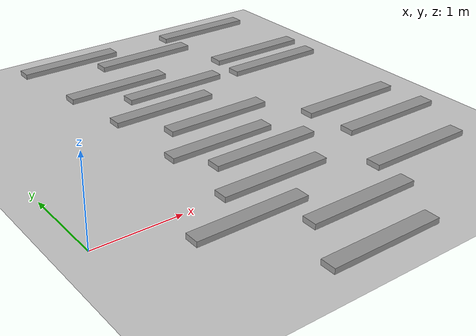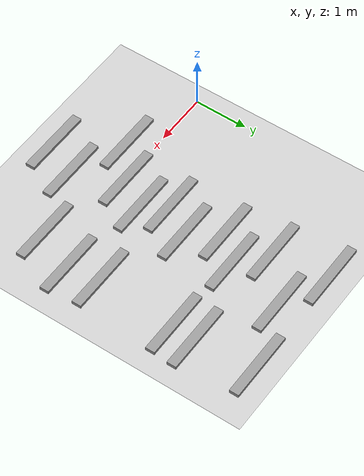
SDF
<sdf version="1.6">
 <world name="default">
  <model name="ground_plane">
   <static>1</static>
   <link name="link">
    <collision name="collision">
     <geometry><plane><normal>0 0 1</normal><size>100 100</size></plane></geometry>
     <surface>
      <contact><ode><kp>1e+12</kp><min_depth>0.01</min_depth></ode></contact>
      <friction><ode><mu>1e+06</mu><mu2>500000</mu2></ode></friction>
     </surface>
    </collision>
    <visual name="visual">
     <cast_shadows>0</cast_shadows>
     <geometry><plane><normal>0 0 1</normal><size>100 100</size></plane></geometry>
     <material>
      <script><uri>file://media/materials/scripts/gazebo.material</uri><name>Gazebo/Grey</name></script>
     </material>
    </visual>
   </link>
  </model>
  <model name="unit_box_heavy_clone_clone_clone">
   <link name="unit_box::link">
    <inertial>
     <mass>5000</mass>
     <inertia><ixx>833.333</ixx><ixy>0</ixy><ixz>0</ixz><iyy>833.333</iyy><iyz>0</iyz><izz>833.333</izz></inertia>
    </inertial>
    <visual name="visual">
     <geometry><box><size>1.30816 0.176312 0.062582</size></box></geometry>
     <material>
      <script><name>Gazebo/Grey</name><uri>file://media/materials/scripts/gazebo.material</uri></script>
      <shader type="pixel"><normal_map>__default__</normal_map></shader>
     </material>
    </visual>
    <collision name="collision">
     <geometry><box><size>1.30816 0.176312 0.062582</size></box></geometry>
     <surface>
      <friction>
       <ode><mu>1</mu><mu2>1</mu2><fdir1>0 0 0</fdir1><slip1>0</slip1><slip2>0</slip2></ode>
       <torsional>
        <coefficient>1</coefficient>
        <patch_radius>0</patch_radius>
        <surface_radius>0</surface_radius>
        <use_patch_radius>1</use_patch_radius>
        <ode><slip>0</slip></ode>
       </torsional>
      </friction>
      <bounce><restitution_coefficient>0</restitution_coefficient><threshold>1e+06</threshold></bounce>
      <contact>
       <collide_without_contact>0</collide_without_contact>
       <collide_without_contact_bitmask>1</collide_without_contact_bitmask>
       <collide_bitmask>1</collide_bitmask>
       <ode>
        <soft_cfm>0</soft_cfm>
        <soft_erp>0.2</soft_erp>
        <kp>1e+13</kp>
        <kd>1</kd>
        <max_vel>0.01</max_vel>
        <min_depth>0</min_depth>
       </ode>
       <bullet>
        <split_impulse>1</split_impulse>
        <split_impulse_penetration_threshold>-0.01</split_impulse_penetration_threshold>
        <soft_cfm>0</soft_cfm>
        <soft_erp>0.2</soft_erp>
        <kp>1e+13</kp>
        <kd>1</kd>
       </bullet>
      </contact>
     </surface>
    </collision>
   </link>
   <static>0</static>
   <pose>2.08958 0.009134 0.031291 -0 -0 -3e-05</pose>
  </model>
  <model name="unit_box_heavy_clone_clone_clone_clone_1">
   <link name="unit_box::link">
    <inertial>
     <mass>5000</mass>
     <inertia><ixx>833.333</ixx><ixy>0</ixy><ixz>0</ixz><iyy>833.333</iyy><iyz>0</iyz><izz>833.333</izz></inertia>
    </inertial>
    <visual name="visual">
     <geometry><box><size>1.30816 0.176312 0.062582</size></box></geometry>
     <material>
      <script><name>Gazebo/Grey</name><uri>file://media/materials/scripts/gazebo.material</uri></script>
      <shader type="pixel"><normal_map>__default__</normal_map></shader>
     </material>
    </visual>
    <collision name="collision">
     <geometry><box><size>1.30816 0.176312 0.062582</size></box></geometry>
     <surface>
      <friction>
       <ode><mu>1</mu><mu2>1</mu2><fdir1>0 0 0</fdir1><slip1>0</slip1><slip2>0</slip2></ode>
       <torsional>
        <coefficient>1</coefficient>
        <patch_radius>0</patch_radius>
        <surface_radius>0</surface_radius>
        <use_patch_radius>1</use_patch_radius>
        <ode><slip>0</slip></ode>
       </torsional>
      </friction>
      <bounce><restitution_coefficient>0</restitution_coefficient><threshold>1e+06</threshold></bounce>
      <contact>
       <collide_without_contact>0</collide_without_contact>
       <collide_without_contact_bitmask>1</collide_without_contact_bitmask>
       <collide_bitmask>1</collide_bitmask>
       <ode>
        <soft_cfm>0</soft_cfm>
        <soft_erp>0.2</soft_erp>
        <kp>1e+13</kp>
        <kd>1</kd>
        <max_vel>0.01</max_vel>
        <min_depth>0</min_depth>
       </ode>
       <bullet>
        <split_impulse>1</split_impulse>
        <split_impulse_penetration_threshold>-0.01</split_impulse_penetration_threshold>
        <soft_cfm>0</soft_cfm>
        <soft_erp>0.2</soft_erp>
        <kp>1e+13</kp>
        <kd>1</kd>
       </bullet>
      </contact>
     </surface>
    </collision>
   </link>
   <static>0</static>
   <pose>2.38982 0.534391 0.031291 0 0 -3e-05</pose>
  </model>
  <model name="unit_box_heavy_clone_clone_clone_clone_2">
   <link name="unit_box::link">
    <inertial>
     <mass>5000</mass>
     <inertia><ixx>833.333</ixx><ixy>0</ixy><ixz>0</ixz><iyy>833.333</iyy><iyz>0</iyz><izz>833.333</izz></inertia>
    </inertial>
    <visual name="visual">
     <geometry><box><size>1.30816 0.176312 0.062582</size></box></geometry>
     <material>
      <script><name>Gazebo/Grey</name><uri>file://media/materials/scripts/gazebo.material</uri></script>
      <shader type="pixel"><normal_map>__default__</normal_map></shader>
     </material>
    </visual>
    <collision name="collision">
     <geometry><box><size>1.30816 0.176312 0.062582</size></box></geometry>
     <surface>
      <friction>
       <ode><mu>1</mu><mu2>1</mu2><fdir1>0 0 0</fdir1><slip1>0</slip1><slip2>0</slip2></ode>
       <torsional>
        <coefficient>1</coefficient>
        <patch_radius>0</patch_radius>
        <surface_radius>0</surface_radius>
        <use_patch_radius>1</use_patch_radius>
        <ode><slip>0</slip></ode>
       </torsional>
      </friction>
      <bounce><restitution_coefficient>0</restitution_coefficient><threshold>1e+06</threshold></bounce>
      <contact>
       <collide_without_contact>0</collide_without_contact>
       <collide_without_contact_bitmask>1</collide_without_contact_bitmask>
       <collide_bitmask>1</collide_bitmask>
       <ode>
        <soft_cfm>0</soft_cfm>
        <soft_erp>0.2</soft_erp>
        <kp>1e+13</kp>
        <kd>1</kd>
        <max_vel>0.01</max_vel>
        <min_depth>0</min_depth>
       </ode>
       <bullet>
        <split_impulse>1</split_impulse>
        <split_impulse_penetration_threshold>-0.01</split_impulse_penetration_threshold>
        <soft_cfm>0</soft_cfm>
        <soft_erp>0.2</soft_erp>
        <kp>1e+13</kp>
        <kd>1</kd>
       </bullet>
      </contact>
     </surface>
    </collision>
   </link>
   <static>0</static>
   <pose>2.11435 0.94215 0.031291 -0 -0 -3e-05</pose>
  </model>
  <model name="unit_box_heavy_clone_clone_clone_clone_3">
   <link name="unit_box::link">
    <inertial>
     <mass>5000</mass>
     <inertia><ixx>833.333</ixx><ixy>0</ixy><ixz>0</ixz><iyy>833.333</iyy><iyz>0</iyz><izz>833.333</izz></inertia>
    </inertial>
    <visual name="visual">
     <geometry><box><size>1.30816 0.176312 0.062582</size></box></geometry>
     <material>
      <script><name>Gazebo/Grey</name><uri>file://media/materials/scripts/gazebo.material</uri></script>
      <shader type="pixel"><normal_map>__default__</normal_map></shader>
     </material>
    </visual>
    <collision name="collision">
     <geometry><box><size>1.30816 0.176312 0.062582</size></box></geometry>
     <surface>
      <friction>
       <ode><mu>1</mu><mu2>1</mu2><fdir1>0 0 0</fdir1><slip1>0</slip1><slip2>0</slip2></ode>
       <torsional>
        <coefficient>1</coefficient>
        <patch_radius>0</patch_radius>
        <surface_radius>0</surface_radius>
        <use_patch_radius>1</use_patch_radius>
        <ode><slip>0</slip></ode>
       </torsional>
      </friction>
      <bounce><restitution_coefficient>0</restitution_coefficient><threshold>1e+06</threshold></bounce>
      <contact>
       <collide_without_contact>0</collide_without_contact>
       <collide_without_contact_bitmask>1</collide_without_contact_bitmask>
       <collide_bitmask>1</collide_bitmask>
       <ode>
        <soft_cfm>0</soft_cfm>
        <soft_erp>0.2</soft_erp>
        <kp>1e+13</kp>
        <kd>1</kd>
        <max_vel>0.01</max_vel>
        <min_depth>0</min_depth>
       </ode>
       <bullet>
        <split_impulse>1</split_impulse>
        <split_impulse_penetration_threshold>-0.01</split_impulse_penetration_threshold>
        <soft_cfm>0</soft_cfm>
        <soft_erp>0.2</soft_erp>
        <kp>1e+13</kp>
        <kd>1</kd>
       </bullet>
      </contact>
     </surface>
    </collision>
   </link>
   <static>0</static>
   <pose>2.44199 1.45418 0.031291 0 0 -3e-05</pose>
  </model>
  <model name="unit_box_heavy_clone_clone_clone_clone_4">
   <link name="unit_box::link">
    <inertial>
     <mass>5000</mass>
     <inertia><ixx>833.333</ixx><ixy>0</ixy><ixz>0</ixz><iyy>833.333</iyy><iyz>0</iyz><izz>833.333</izz></inertia>
    </inertial>
    <visual name="visual">
     <geometry><box><size>1.30816 0.176312 0.062582</size></box></geometry>
     <material>
      <script><name>Gazebo/Grey</name><uri>file://media/materials/scripts/gazebo.material</uri></script>
      <shader type="pixel"><normal_map>__default__</normal_map></shader>
     </material>
    </visual>
    <collision name="collision">
     <geometry><box><size>1.30816 0.176312 0.062582</size></box></geometry>
     <surface>
      <friction>
       <ode><mu>1</mu><mu2>1</mu2><fdir1>0 0 0</fdir1><slip1>0</slip1><slip2>0</slip2></ode>
       <torsional>
        <coefficient>1</coefficient>
        <patch_radius>0</patch_radius>
        <surface_radius>0</surface_radius>
        <use_patch_radius>1</use_patch_radius>
        <ode><slip>0</slip></ode>
       </torsional>
      </friction>
      <bounce><restitution_coefficient>0</restitution_coefficient><threshold>1e+06</threshold></bounce>
      <contact>
       <collide_without_contact>0</collide_without_contact>
       <collide_without_contact_bitmask>1</collide_without_contact_bitmask>
       <collide_bitmask>1</collide_bitmask>
       <ode>
        <soft_cfm>0</soft_cfm>
        <soft_erp>0.2</soft_erp>
        <kp>1e+13</kp>
        <kd>1</kd>
        <max_vel>0.01</max_vel>
        <min_depth>0</min_depth>
       </ode>
       <bullet>
        <split_impulse>1</split_impulse>
        <split_impulse_penetration_threshold>-0.01</split_impulse_penetration_threshold>
        <soft_cfm>0</soft_cfm>
        <soft_erp>0.2</soft_erp>
        <kp>1e+13</kp>
        <kd>1</kd>
       </bullet>
      </contact>
     </surface>
    </collision>
   </link>
   <static>0</static>
   <pose>2.06355 1.99736 0.031291 -0 -0 -3e-05</pose>
  </model>
  <model name="unit_box_heavy_clone_clone_clone_clone_5">
   <link name="unit_box::link">
    <inertial>
     <mass>5000</mass>
     <inertia><ixx>833.333</ixx><ixy>0</ixy><ixz>0</ixz><iyy>833.333</iyy><iyz>0</iyz><izz>833.333</izz></inertia>
    </inertial>
    <visual name="visual">
     <geometry><box><size>1.30816 0.176312 0.062582</size></box></geometry>
     <material>
      <script><name>Gazebo/Grey</name><uri>file://media/materials/scripts/gazebo.material</uri></script>
      <shader type="pixel"><normal_map>__default__</normal_map></shader>
     </material>
    </visual>
    <collision name="collision">
     <geometry><box><size>1.30816 0.176312 0.062582</size></box></geometry>
     <surface>
      <friction>
       <ode><mu>1</mu><mu2>1</mu2><fdir1>0 0 0</fdir1><slip1>0</slip1><slip2>0</slip2></ode>
       <torsional>
        <coefficient>1</coefficient>
        <patch_radius>0</patch_radius>
        <surface_radius>0</surface_radius>
        <use_patch_radius>1</use_patch_radius>
        <ode><slip>0</slip></ode>
       </torsional>
      </friction>
      <bounce><restitution_coefficient>0</restitution_coefficient><threshold>1e+06</threshold></bounce>
      <contact>
       <collide_without_contact>0</collide_without_contact>
       <collide_without_contact_bitmask>1</collide_without_contact_bitmask>
       <collide_bitmask>1</collide_bitmask>
       <ode>
        <soft_cfm>0</soft_cfm>
        <soft_erp>0.2</soft_erp>
        <kp>1e+13</kp>
        <kd>1</kd>
        <max_vel>0.01</max_vel>
        <min_depth>0</min_depth>
       </ode>
       <bullet>
        <split_impulse>1</split_impulse>
        <split_impulse_penetration_threshold>-0.01</split_impulse_penetration_threshold>
        <soft_cfm>0</soft_cfm>
        <soft_erp>0.2</soft_erp>
        <kp>1e+13</kp>
        <kd>1</kd>
       </bullet>
      </contact>
     </surface>
    </collision>
   </link>
   <static>0</static>
   <pose>2.50068 2.42632 0.031291 0 0 -3e-05</pose>
  </model>
  <model name="unit_box_heavy_clone_clone_clone_clone_6">
   <link name="unit_box::link">
    <inertial>
     <mass>5000</mass>
     <inertia><ixx>833.333</ixx><ixy>0</ixy><ixz>0</ixz><iyy>833.333</iyy><iyz>0</iyz><izz>833.333</izz></inertia>
    </inertial>
    <visual name="visual">
     <geometry><box><size>1.30816 0.176312 0.062582</size></box></geometry>
     <material>
      <script><name>Gazebo/Grey</name><uri>file://media/materials/scripts/gazebo.material</uri></script>
      <shader type="pixel"><normal_map>__default__</normal_map></shader>
     </material>
    </visual>
    <collision name="collision">
     <geometry><box><size>1.30816 0.176312 0.062582</size></box></geometry>
     <surface>
      <friction>
       <ode><mu>1</mu><mu2>1</mu2><fdir1>0 0 0</fdir1><slip1>0</slip1><slip2>0</slip2></ode>
       <torsional>
        <coefficient>1</coefficient>
        <patch_radius>0</patch_radius>
        <surface_radius>0</surface_radius>
        <use_patch_radius>1</use_patch_radius>
        <ode><slip>0</slip></ode>
       </torsional>
      </friction>
      <bounce><restitution_coefficient>0</restitution_coefficient><threshold>1e+06</threshold></bounce>
      <contact>
       <collide_without_contact>0</collide_without_contact>
       <collide_without_contact_bitmask>1</collide_without_contact_bitmask>
       <collide_bitmask>1</collide_bitmask>
       <ode>
        <soft_cfm>0</soft_cfm>
        <soft_erp>0.2</soft_erp>
        <kp>1e+13</kp>
        <kd>1</kd>
        <max_vel>0.01</max_vel>
        <min_depth>0</min_depth>
       </ode>
       <bullet>
        <split_impulse>1</split_impulse>
        <split_impulse_penetration_threshold>-0.01</split_impulse_penetration_threshold>
        <soft_cfm>0</soft_cfm>
        <soft_erp>0.2</soft_erp>
        <kp>1e+13</kp>
        <kd>1</kd>
       </bullet>
      </contact>
     </surface>
    </collision>
   </link>
   <static>0</static>
   <pose>1.95183 2.85478 0.031291 -0 -0 -3e-05</pose>
  </model>
  <model name="unit_box_heavy_clone_clone_clone_clone_7">
   <link name="unit_box::link">
    <inertial>
     <mass>5000</mass>
     <inertia><ixx>833.333</ixx><ixy>0</ixy><ixz>0</ixz><iyy>833.333</iyy><iyz>0</iyz><izz>833.333</izz></inertia>
    </inertial>
    <visual name="visual">
     <geometry><box><size>1.30816 0.176312 0.062582</size></box></geometry>
     <material>
      <script><name>Gazebo/Grey</name><uri>file://media/materials/scripts/gazebo.material</uri></script>
      <shader type="pixel"><normal_map>__default__</normal_map></shader>
     </material>
    </visual>
    <collision name="collision">
     <geometry><box><size>1.30816 0.176312 0.062582</size></box></geometry>
     <surface>
      <friction>
       <ode><mu>1</mu><mu2>1</mu2><fdir1>0 0 0</fdir1><slip1>0</slip1><slip2>0</slip2></ode>
       <torsional>
        <coefficient>1</coefficient>
        <patch_radius>0</patch_radius>
        <surface_radius>0</surface_radius>
        <use_patch_radius>1</use_patch_radius>
        <ode><slip>0</slip></ode>
       </torsional>
      </friction>
      <bounce><restitution_coefficient>0</restitution_coefficient><threshold>1e+06</threshold></bounce>
      <contact>
       <collide_without_contact>0</collide_without_contact>
       <collide_without_contact_bitmask>1</collide_without_contact_bitmask>
       <collide_bitmask>1</collide_bitmask>
       <ode>
        <soft_cfm>0</soft_cfm>
        <soft_erp>0.2</soft_erp>
        <kp>1e+13</kp>
        <kd>1</kd>
        <max_vel>0.01</max_vel>
        <min_depth>0</min_depth>
       </ode>
       <bullet>
        <split_impulse>1</split_impulse>
        <split_impulse_penetration_threshold>-0.01</split_impulse_penetration_threshold>
        <soft_cfm>0</soft_cfm>
        <soft_erp>0.2</soft_erp>
        <kp>1e+13</kp>
        <kd>1</kd>
       </bullet>
      </contact>
     </surface>
    </collision>
   </link>
   <static>0</static>
   <pose>2.73379 3.49196 0.031291 0 0 -3e-05</pose>
  </model>
  <model name="unit_box_heavy_clone_clone_clone_clone_8">
   <link name="unit_box::link">
    <inertial>
     <mass>5000</mass>
     <inertia><ixx>833.333</ixx><ixy>0</ixy><ixz>0</ixz><iyy>833.333</iyy><iyz>0</iyz><izz>833.333</izz></inertia>
    </inertial>
    <visual name="visual">
     <geometry><box><size>1.30816 0.176312 0.062582</size></box></geometry>
     <material>
      <script><name>Gazebo/Grey</name><uri>file://media/materials/scripts/gazebo.material</uri></script>
      <shader type="pixel"><normal_map>__default__</normal_map></shader>
     </material>
    </visual>
    <collision name="collision">
     <geometry><box><size>1.30816 0.176312 0.062582</size></box></geometry>
     <surface>
      <friction>
       <ode><mu>1</mu><mu2>1</mu2><fdir1>0 0 0</fdir1><slip1>0</slip1><slip2>0</slip2></ode>
       <torsional>
        <coefficient>1</coefficient>
        <patch_radius>0</patch_radius>
        <surface_radius>0</surface_radius>
        <use_patch_radius>1</use_patch_radius>
        <ode><slip>0</slip></ode>
       </torsional>
      </friction>
      <bounce><restitution_coefficient>0</restitution_coefficient><threshold>1e+06</threshold></bounce>
      <contact>
       <collide_without_contact>0</collide_without_contact>
       <collide_without_contact_bitmask>1</collide_without_contact_bitmask>
       <collide_bitmask>1</collide_bitmask>
       <ode>
        <soft_cfm>0</soft_cfm>
        <soft_erp>0.2</soft_erp>
        <kp>1e+13</kp>
        <kd>1</kd>
        <max_vel>0.01</max_vel>
        <min_depth>0</min_depth>
       </ode>
       <bullet>
        <split_impulse>1</split_impulse>
        <split_impulse_penetration_threshold>-0.01</split_impulse_penetration_threshold>
        <soft_cfm>0</soft_cfm>
        <soft_erp>0.2</soft_erp>
        <kp>1e+13</kp>
        <kd>1</kd>
       </bullet>
      </contact>
     </surface>
    </collision>
   </link>
   <static>0</static>
   <pose>1.82996 3.87196 0.031291 -0 -0 -3e-05</pose>
  </model>
  <model name="unit_box_heavy_clone_clone_clone_clone_9">
   <link name="unit_box::link">
    <inertial>
     <mass>5000</mass>
     <inertia><ixx>833.333</ixx><ixy>0</ixy><ixz>0</ixz><iyy>833.333</iyy><iyz>0</iyz><izz>833.333</izz></inertia>
    </inertial>
    <visual name="visual">
     <geometry><box><size>1.30816 0.176312 0.062582</size></box></geometry>
     <material>
      <script><name>Gazebo/Grey</name><uri>file://media/materials/scripts/gazebo.material</uri></script>
      <shader type="pixel"><normal_map>__default__</normal_map></shader>
     </material>
    </visual>
    <collision name="collision">
     <geometry><box><size>1.30816 0.176312 0.062582</size></box></geometry>
     <surface>
      <friction>
       <ode><mu>1</mu><mu2>1</mu2><fdir1>0 0 0</fdir1><slip1>0</slip1><slip2>0</slip2></ode>
       <torsional>
        <coefficient>1</coefficient>
        <patch_radius>0</patch_radius>
        <surface_radius>0</surface_radius>
        <use_patch_radius>1</use_patch_radius>
        <ode><slip>0</slip></ode>
       </torsional>
      </friction>
      <bounce><restitution_coefficient>0</restitution_coefficient><threshold>1e+06</threshold></bounce>
      <contact>
       <collide_without_contact>0</collide_without_contact>
       <collide_without_contact_bitmask>1</collide_without_contact_bitmask>
       <collide_bitmask>1</collide_bitmask>
       <ode>
        <soft_cfm>0</soft_cfm>
        <soft_erp>0.2</soft_erp>
        <kp>1e+13</kp>
        <kd>1</kd>
        <max_vel>0.01</max_vel>
        <min_depth>0</min_depth>
       </ode>
       <bullet>
        <split_impulse>1</split_impulse>
        <split_impulse_penetration_threshold>-0.01</split_impulse_penetration_threshold>
        <soft_cfm>0</soft_cfm>
        <soft_erp>0.2</soft_erp>
        <kp>1e+13</kp>
        <kd>1</kd>
       </bullet>
      </contact>
     </surface>
    </collision>
   </link>
   <static>0</static>
   <pose>1.44418 -0.437914 0.031291 0 0 -3e-05</pose>
  </model>
  <model name="unit_box_heavy_clone_clone_clone_clone_10">
   <link name="unit_box::link">
    <inertial>
     <mass>5000</mass>
     <inertia><ixx>833.333</ixx><ixy>0</ixy><ixz>0</ixz><iyy>833.333</iyy><iyz>0</iyz><izz>833.333</izz></inertia>
    </inertial>
    <visual name="visual">
     <geometry><box><size>1.30816 0.176312 0.062582</size></box></geometry>
     <material>
      <script><name>Gazebo/Grey</name><uri>file://media/materials/scripts/gazebo.material</uri></script>
      <shader type="pixel"><normal_map>__default__</normal_map></shader>
     </material>
    </visual>
    <collision name="collision">
     <geometry><box><size>1.30816 0.176312 0.062582</size></box></geometry>
     <surface>
      <friction>
       <ode><mu>1</mu><mu2>1</mu2><fdir1>0 0 0</fdir1><slip1>0</slip1><slip2>0</slip2></ode>
       <torsional>
        <coefficient>1</coefficient>
        <patch_radius>0</patch_radius>
        <surface_radius>0</surface_radius>
        <use_patch_radius>1</use_patch_radius>
        <ode><slip>0</slip></ode>
       </torsional>
      </friction>
      <bounce><restitution_coefficient>0</restitution_coefficient><threshold>1e+06</threshold></bounce>
      <contact>
       <collide_without_contact>0</collide_without_contact>
       <collide_without_contact_bitmask>1</collide_without_contact_bitmask>
       <collide_bitmask>1</collide_bitmask>
       <ode>
        <soft_cfm>0</soft_cfm>
        <soft_erp>0.2</soft_erp>
        <kp>1e+13</kp>
        <kd>1</kd>
        <max_vel>0.01</max_vel>
        <min_depth>0</min_depth>
       </ode>
       <bullet>
        <split_impulse>1</split_impulse>
        <split_impulse_penetration_threshold>-0.01</split_impulse_penetration_threshold>
        <soft_cfm>0</soft_cfm>
        <soft_erp>0.2</soft_erp>
        <kp>1e+13</kp>
        <kd>1</kd>
       </bullet>
      </contact>
     </surface>
    </collision>
   </link>
   <static>0</static>
   <pose>2.46947 -0.850762 0.031291 -0 -0 -3e-05</pose>
  </model>
  <model name="unit_box_heavy_clone_clone_clone_clone_11">
   <link name="unit_box::link">
    <inertial>
     <mass>5000</mass>
     <inertia><ixx>833.333</ixx><ixy>0</ixy><ixz>0</ixz><iyy>833.333</iyy><iyz>0</iyz><izz>833.333</izz></inertia>
    </inertial>
    <visual name="visual">
     <geometry><box><size>1.30816 0.176312 0.062582</size></box></geometry>
     <material>
      <script><name>Gazebo/Grey</name><uri>file://media/materials/scripts/gazebo.material</uri></script>
      <shader type="pixel"><normal_map>__default__</normal_map></shader>
     </material>
    </visual>
    <collision name="collision">
     <geometry><box><size>1.30816 0.176312 0.062582</size></box></geometry>
     <surface>
      <friction>
       <ode><mu>1</mu><mu2>1</mu2><fdir1>0 0 0</fdir1><slip1>0</slip1><slip2>0</slip2></ode>
       <torsional>
        <coefficient>1</coefficient>
        <patch_radius>0</patch_radius>
        <surface_radius>0</surface_radius>
        <use_patch_radius>1</use_patch_radius>
        <ode><slip>0</slip></ode>
       </torsional>
      </friction>
      <bounce><restitution_coefficient>0</restitution_coefficient><threshold>1e+06</threshold></bounce>
      <contact>
       <collide_without_contact>0</collide_without_contact>
       <collide_without_contact_bitmask>1</collide_without_contact_bitmask>
       <collide_bitmask>1</collide_bitmask>
       <ode>
        <soft_cfm>0</soft_cfm>
        <soft_erp>0.2</soft_erp>
        <kp>1e+13</kp>
        <kd>1</kd>
        <max_vel>0.01</max_vel>
        <min_depth>0</min_depth>
       </ode>
       <bullet>
        <split_impulse>1</split_impulse>
        <split_impulse_penetration_threshold>-0.01</split_impulse_penetration_threshold>
        <soft_cfm>0</soft_cfm>
        <soft_erp>0.2</soft_erp>
        <kp>1e+13</kp>
        <kd>1</kd>
       </bullet>
      </contact>
     </surface>
    </collision>
   </link>
   <static>0</static>
   <pose>2.14972 -1.4495 0.031291 0 0 -3e-05</pose>
  </model>
  <model name="unit_box_heavy_clone_clone_clone_clone_19">
   <link name="unit_box::link">
    <inertial>
     <mass>5000</mass>
     <inertia><ixx>833.333</ixx><ixy>0</ixy><ixz>0</ixz><iyy>833.333</iyy><iyz>0</iyz><izz>833.333</izz></inertia>
    </inertial>
    <visual name="visual">
     <geometry><box><size>1.30816 0.176312 0.062582</size></box></geometry>
     <material>
      <script><name>Gazebo/Grey</name><uri>file://media/materials/scripts/gazebo.material</uri></script>
      <shader type="pixel"><normal_map>__default__</normal_map></shader>
     </material>
    </visual>
    <collision name="collision">
     <geometry><box><size>1.30816 0.176312 0.062582</size></box></geometry>
     <surface>
      <friction>
       <ode><mu>1</mu><mu2>1</mu2><fdir1>0 0 0</fdir1><slip1>0</slip1><slip2>0</slip2></ode>
       <torsional>
        <coefficient>1</coefficient>
        <patch_radius>0</patch_radius>
        <surface_radius>0</surface_radius>
        <use_patch_radius>1</use_patch_radius>
        <ode><slip>0</slip></ode>
       </torsional>
      </friction>
      <bounce><restitution_coefficient>0</restitution_coefficient><threshold>1e+06</threshold></bounce>
      <contact>
       <collide_without_contact>0</collide_without_contact>
       <collide_without_contact_bitmask>1</collide_without_contact_bitmask>
       <collide_bitmask>1</collide_bitmask>
       <ode>
        <soft_cfm>0</soft_cfm>
        <soft_erp>0.2</soft_erp>
        <kp>1e+13</kp>
        <kd>1</kd>
        <max_vel>0.01</max_vel>
        <min_depth>0</min_depth>
       </ode>
       <bullet>
        <split_impulse>1</split_impulse>
        <split_impulse_penetration_threshold>-0.01</split_impulse_penetration_threshold>
        <soft_cfm>0</soft_cfm>
        <soft_erp>0.2</soft_erp>
        <kp>1e+13</kp>
        <kd>1</kd>
       </bullet>
      </contact>
     </surface>
    </collision>
   </link>
   <static>0</static>
   <pose>3.72327 -0.428406 0.031291 0 0 -3e-05</pose>
  </model>
  <model name="unit_box_heavy_clone_clone_clone_clone_20">
   <link name="unit_box::link">
    <inertial>
     <mass>5000</mass>
     <inertia><ixx>833.333</ixx><ixy>0</ixy><ixz>0</ixz><iyy>833.333</iyy><iyz>0</iyz><izz>833.333</izz></inertia>
    </inertial>
    <visual name="visual">
     <geometry><box><size>1.30816 0.176312 0.062582</size></box></geometry>
     <material>
      <script><name>Gazebo/Grey</name><uri>file://media/materials/scripts/gazebo.material</uri></script>
      <shader type="pixel"><normal_map>__default__</normal_map></shader>
     </material>
    </visual>
    <collision name="collision">
     <geometry><box><size>1.30816 0.176312 0.062582</size></box></geometry>
     <surface>
      <friction>
       <ode><mu>1</mu><mu2>1</mu2><fdir1>0 0 0</fdir1><slip1>0</slip1><slip2>0</slip2></ode>
       <torsional>
        <coefficient>1</coefficient>
        <patch_radius>0</patch_radius>
        <surface_radius>0</surface_radius>
        <use_patch_radius>1</use_patch_radius>
        <ode><slip>0</slip></ode>
       </torsional>
      </friction>
      <bounce><restitution_coefficient>0</restitution_coefficient><threshold>1e+06</threshold></bounce>
      <contact>
       <collide_without_contact>0</collide_without_contact>
       <collide_without_contact_bitmask>1</collide_without_contact_bitmask>
       <collide_bitmask>1</collide_bitmask>
       <ode>
        <soft_cfm>0</soft_cfm>
        <soft_erp>0.2</soft_erp>
        <kp>1e+13</kp>
        <kd>1</kd>
        <max_vel>0.01</max_vel>
        <min_depth>0</min_depth>
       </ode>
       <bullet>
        <split_impulse>1</split_impulse>
        <split_impulse_penetration_threshold>-0.01</split_impulse_penetration_threshold>
        <soft_cfm>0</soft_cfm>
        <soft_erp>0.2</soft_erp>
        <kp>1e+13</kp>
        <kd>1</kd>
       </bullet>
      </contact>
     </surface>
    </collision>
   </link>
   <static>0</static>
   <pose>4.04561 0.297955 0.031291 -0 -0 -3e-05</pose>
  </model>
  <model name="unit_box_heavy_clone_clone_clone_clone_21">
   <link name="unit_box::link">
    <inertial>
     <mass>5000</mass>
     <inertia><ixx>833.333</ixx><ixy>0</ixy><ixz>0</ixz><iyy>833.333</iyy><iyz>0</iyz><izz>833.333</izz></inertia>
    </inertial>
    <visual name="visual">
     <geometry><box><size>1.30816 0.176312 0.062582</size></box></geometry>
     <material>
      <script><name>Gazebo/Grey</name><uri>file://media/materials/scripts/gazebo.material</uri></script>
      <shader type="pixel"><normal_map>__default__</normal_map></shader>
     </material>
    </visual>
    <collision name="collision">
     <geometry><box><size>1.30816 0.176312 0.062582</size></box></geometry>
     <surface>
      <friction>
       <ode><mu>1</mu><mu2>1</mu2><fdir1>0 0 0</fdir1><slip1>0</slip1><slip2>0</slip2></ode>
       <torsional>
        <coefficient>1</coefficient>
        <patch_radius>0</patch_radius>
        <surface_radius>0</surface_radius>
        <use_patch_radius>1</use_patch_radius>
        <ode><slip>0</slip></ode>
       </torsional>
      </friction>
      <bounce><restitution_coefficient>0</restitution_coefficient><threshold>1e+06</threshold></bounce>
      <contact>
       <collide_without_contact>0</collide_without_contact>
       <collide_without_contact_bitmask>1</collide_without_contact_bitmask>
       <collide_bitmask>1</collide_bitmask>
       <ode>
        <soft_cfm>0</soft_cfm>
        <soft_erp>0.2</soft_erp>
        <kp>1e+13</kp>
        <kd>1</kd>
        <max_vel>0.01</max_vel>
        <min_depth>0</min_depth>
       </ode>
       <bullet>
        <split_impulse>1</split_impulse>
        <split_impulse_penetration_threshold>-0.01</split_impulse_penetration_threshold>
        <soft_cfm>0</soft_cfm>
        <soft_erp>0.2</soft_erp>
        <kp>1e+13</kp>
        <kd>1</kd>
       </bullet>
      </contact>
     </surface>
    </collision>
   </link>
   <static>0</static>
   <pose>3.9751 0.887963 0.031291 0 0 -3e-05</pose>
  </model>
  <model name="unit_box_heavy_clone_clone_clone_clone_23">
   <link name="unit_box::link">
    <inertial>
     <mass>5000</mass>
     <inertia><ixx>833.333</ixx><ixy>0</ixy><ixz>0</ixz><iyy>833.333</iyy><iyz>0</iyz><izz>833.333</izz></inertia>
    </inertial>
    <visual name="visual">
     <geometry><box><size>1.30816 0.176312 0.062582</size></box></geometry>
     <material>
      <script><name>Gazebo/Grey</name><uri>file://media/materials/scripts/gazebo.material</uri></script>
      <shader type="pixel"><normal_map>__default__</normal_map></shader>
     </material>
    </visual>
    <collision name="collision">
     <geometry><box><size>1.30816 0.176312 0.062582</size></box></geometry>
     <surface>
      <friction>
       <ode><mu>1</mu><mu2>1</mu2><fdir1>0 0 0</fdir1><slip1>0</slip1><slip2>0</slip2></ode>
       <torsional>
        <coefficient>1</coefficient>
        <patch_radius>0</patch_radius>
        <surface_radius>0</surface_radius>
        <use_patch_radius>1</use_patch_radius>
        <ode><slip>0</slip></ode>
       </torsional>
      </friction>
      <bounce><restitution_coefficient>0</restitution_coefficient><threshold>1e+06</threshold></bounce>
      <contact>
       <collide_without_contact>0</collide_without_contact>
       <collide_without_contact_bitmask>1</collide_without_contact_bitmask>
       <collide_bitmask>1</collide_bitmask>
       <ode>
        <soft_cfm>0</soft_cfm>
        <soft_erp>0.2</soft_erp>
        <kp>1e+13</kp>
        <kd>1</kd>
        <max_vel>0.01</max_vel>
        <min_depth>0</min_depth>
       </ode>
       <bullet>
        <split_impulse>1</split_impulse>
        <split_impulse_penetration_threshold>-0.01</split_impulse_penetration_threshold>
        <soft_cfm>0</soft_cfm>
        <soft_erp>0.2</soft_erp>
        <kp>1e+13</kp>
        <kd>1</kd>
       </bullet>
      </contact>
     </surface>
    </collision>
   </link>
   <static>0</static>
   <pose>4.02745 2.36033 0.031291 0 0 -3e-05</pose>
  </model>
  <model name="unit_box_heavy_clone_clone_clone_clone_24">
   <link name="unit_box::link">
    <inertial>
     <mass>5000</mass>
     <inertia><ixx>833.333</ixx><ixy>0</ixy><ixz>0</ixz><iyy>833.333</iyy><iyz>0</iyz><izz>833.333</izz></inertia>
    </inertial>
    <visual name="visual">
     <geometry><box><size>1.30816 0.176312 0.062582</size></box></geometry>
     <material>
      <script><name>Gazebo/Grey</name><uri>file://media/materials/scripts/gazebo.material</uri></script>
      <shader type="pixel"><normal_map>__default__</normal_map></shader>
     </material>
    </visual>
    <collision name="collision">
     <geometry><box><size>1.30816 0.176312 0.062582</size></box></geometry>
     <surface>
      <friction>
       <ode><mu>1</mu><mu2>1</mu2><fdir1>0 0 0</fdir1><slip1>0</slip1><slip2>0</slip2></ode>
       <torsional>
        <coefficient>1</coefficient>
        <patch_radius>0</patch_radius>
        <surface_radius>0</surface_radius>
        <use_patch_radius>1</use_patch_radius>
        <ode><slip>0</slip></ode>
       </torsional>
      </friction>
      <bounce><restitution_coefficient>0</restitution_coefficient><threshold>1e+06</threshold></bounce>
      <contact>
       <collide_without_contact>0</collide_without_contact>
       <collide_without_contact_bitmask>1</collide_without_contact_bitmask>
       <collide_bitmask>1</collide_bitmask>
       <ode>
        <soft_cfm>0</soft_cfm>
        <soft_erp>0.2</soft_erp>
        <kp>1e+13</kp>
        <kd>1</kd>
        <max_vel>0.01</max_vel>
        <min_depth>0</min_depth>
       </ode>
       <bullet>
        <split_impulse>1</split_impulse>
        <split_impulse_penetration_threshold>-0.01</split_impulse_penetration_threshold>
        <soft_cfm>0</soft_cfm>
        <soft_erp>0.2</soft_erp>
        <kp>1e+13</kp>
        <kd>1</kd>
       </bullet>
      </contact>
     </surface>
    </collision>
   </link>
   <static>0</static>
   <pose>4.05825 2.79068 0.031291 -0 -0 -3e-05</pose>
  </model>
  <model name="unit_box_heavy_clone_clone_clone_clone_26">
   <link name="unit_box::link">
    <inertial>
     <mass>5000</mass>
     <inertia><ixx>833.333</ixx><ixy>0</ixy><ixz>0</ixz><iyy>833.333</iyy><iyz>0</iyz><izz>833.333</izz></inertia>
    </inertial>
    <visual name="visual">
     <geometry><box><size>1.30816 0.176312 0.062582</size></box></geometry>
     <material>
      <script><name>Gazebo/Grey</name><uri>file://media/materials/scripts/gazebo.material</uri></script>
      <shader type="pixel"><normal_map>__default__</normal_map></shader>
     </material>
    </visual>
    <collision name="collision">
     <geometry><box><size>1.30816 0.176312 0.062582</size></box></geometry>
     <surface>
      <friction>
       <ode><mu>1</mu><mu2>1</mu2><fdir1>0 0 0</fdir1><slip1>0</slip1><slip2>0</slip2></ode>
       <torsional>
        <coefficient>1</coefficient>
        <patch_radius>0</patch_radius>
        <surface_radius>0</surface_radius>
        <use_patch_radius>1</use_patch_radius>
        <ode><slip>0</slip></ode>
       </torsional>
      </friction>
      <bounce><restitution_coefficient>0</restitution_coefficient><threshold>1e+06</threshold></bounce>
      <contact>
       <collide_without_contact>0</collide_without_contact>
       <collide_without_contact_bitmask>1</collide_without_contact_bitmask>
       <collide_bitmask>1</collide_bitmask>
       <ode>
        <soft_cfm>0</soft_cfm>
        <soft_erp>0.2</soft_erp>
        <kp>1e+13</kp>
        <kd>1</kd>
        <max_vel>0.01</max_vel>
        <min_depth>0</min_depth>
       </ode>
       <bullet>
        <split_impulse>1</split_impulse>
        <split_impulse_penetration_threshold>-0.01</split_impulse_penetration_threshold>
        <soft_cfm>0</soft_cfm>
        <soft_erp>0.2</soft_erp>
        <kp>1e+13</kp>
        <kd>1</kd>
       </bullet>
      </contact>
     </surface>
    </collision>
   </link>
   <static>0</static>
   <pose>3.93155 3.877 0.031291 -0 -0 -3e-05</pose>
  </model>
 </world>
</sdf>
